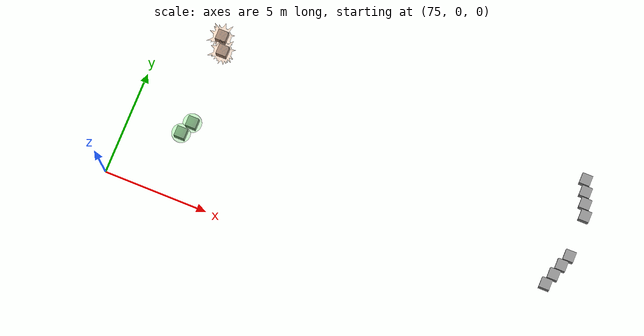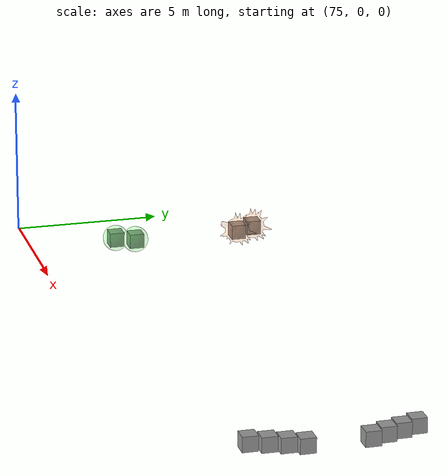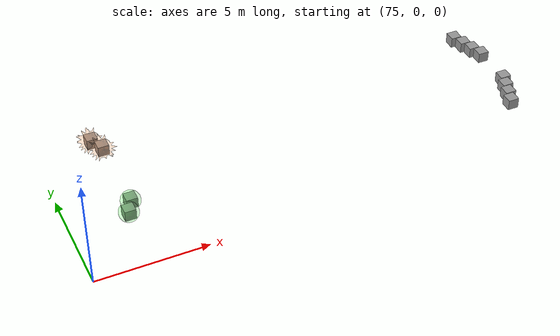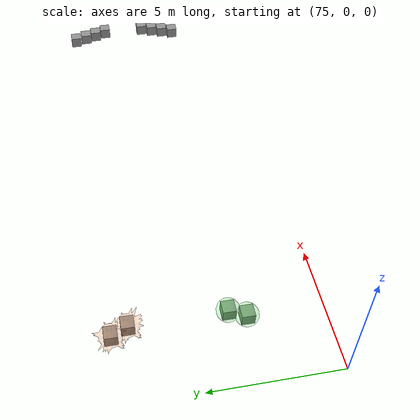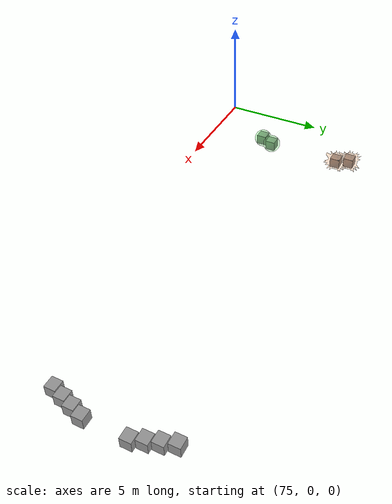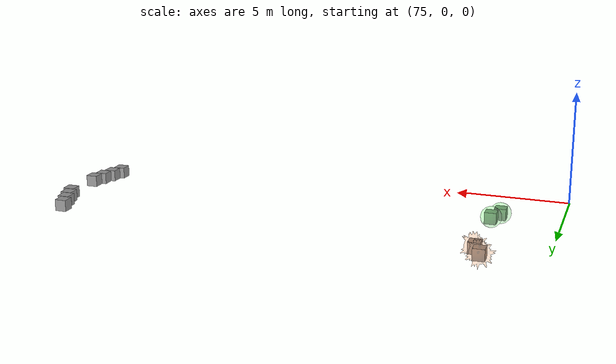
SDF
<sdf version="1.6">
 <world name="default">
  <model name="trap_cont_2_ubias">
   <static>0</static>
   <static>0</static>
   <link name="attracting_cue_0::vis_cue_attract">
    <inertial>
     <mass>1</mass>
     <inertia>
      <ixx>0.166667</ixx>
      <ixy>0</ixy>
      <ixz>0</ixz>
      <iyy>0.166667</iyy>
      <iyz>0</iyz>
      <izz>0.166667</izz>
     </inertia>
    </inertial>
    <collision name="collision"><geometry><box><size>0.5 0.5 0.5</size></box></geometry></collision>
    <visual name="box_visual">
     <geometry><box><size>0.5 0.5 0.5</size></box></geometry>
     <material>
      <script><name>Gazebo/Grey</name><uri>file://media/materials/scripts/gazebo.material</uri></script>
     </material>
    </visual>
    <visual name="cue_visual">
     <geometry><sphere><radius>0.45</radius></sphere></geometry>
     <material>
      <ambient>0 1 0 0.15</ambient>
      <diffuse>0 1 0 0.15</diffuse>
      <specular>0 1 0 0.15</specular>
      <emissive>0 0 0 0</emissive>
     </material>
    </visual>
    <pose>0 -2.48 0.25 0 -0 0</pose>
   </link>
   <static>0</static>
   <link name="attracting_cue_1::vis_cue_attract">
    <inertial>
     <mass>1</mass>
     <inertia>
      <ixx>0.166667</ixx>
      <ixy>0</ixy>
      <ixz>0</ixz>
      <iyy>0.166667</iyy>
      <iyz>0</iyz>
      <izz>0.166667</izz>
     </inertia>
    </inertial>
    <collision name="collision"><geometry><box><size>0.5 0.5 0.5</size></box></geometry></collision>
    <visual name="box_visual">
     <geometry><box><size>0.5 0.5 0.5</size></box></geometry>
     <material>
      <script><name>Gazebo/Grey</name><uri>file://media/materials/scripts/gazebo.material</uri></script>
     </material>
    </visual>
    <visual name="cue_visual">
     <geometry><sphere><radius>0.45</radius></sphere></geometry>
     <material>
      <ambient>0 1 0 0.15</ambient>
      <diffuse>0 1 0 0.15</diffuse>
      <specular>0 1 0 0.15</specular>
      <emissive>0 0 0 0</emissive>
     </material>
    </visual>
    <pose>0.3 -1.845 0.25 0 -0 0</pose>
   </link>
   <static>0</static>
   <link name="repelling_cue_0::vis_cue_repel">
    <inertial>
     <mass>1</mass>
     <inertia>
      <ixx>0.166667</ixx>
      <ixy>0</ixy>
      <ixz>0</ixz>
      <iyy>0.166667</iyy>
      <iyz>0</iyz>
      <izz>0.166667</izz>
     </inertia>
    </inertial>
    <collision name="collision"><geometry><box><size>0.5 0.5 0.5</size></box></geometry></collision>
    <visual name="box_visual">
     <geometry><box><size>0.5 0.5 0.5</size></box></geometry>
     <material>
      <script><name>Gazebo/Grey</name><uri>file://media/materials/scripts/gazebo.material</uri></script>
     </material>
    </visual>
    <visual name="cue_visual">
     <geometry><mesh><uri>model://repelling_cue_2.dae</uri><scale>0.85 0.85 0.85</scale></mesh></geometry>
     <material>
      <ambient>1 0.4 0 0.2</ambient>
      <diffuse>1 0.4 0 0.2</diffuse>
      <specular>1 0.4 0 0.5</specular>
      <emissive>0.5 0.2 0 0.1</emissive>
     </material>
    </visual>
    <pose>0.3 1.845 0.25 0 -0 0</pose>
   </link>
   <static>0</static>
   <link name="repelling_cue_1::vis_cue_repel">
    <inertial>
     <mass>1</mass>
     <inertia>
      <ixx>0.166667</ixx>
      <ixy>0</ixy>
      <ixz>0</ixz>
      <iyy>0.166667</iyy>
      <iyz>0</iyz>
      <izz>0.166667</izz>
     </inertia>
    </inertial>
    <collision name="collision"><geometry><box><size>0.5 0.5 0.5</size></box></geometry></collision>
    <visual name="box_visual">
     <geometry><box><size>0.5 0.5 0.5</size></box></geometry>
     <material>
      <script><name>Gazebo/Grey</name><uri>file://media/materials/scripts/gazebo.material</uri></script>
     </material>
    </visual>
    <visual name="cue_visual">
     <geometry><mesh><uri>model://repelling_cue_2.dae</uri><scale>0.85 0.85 0.85</scale></mesh></geometry>
     <material>
      <ambient>1 0.4 0 0.2</ambient>
      <diffuse>1 0.4 0 0.2</diffuse>
      <specular>1 0.4 0 0.5</specular>
      <emissive>0.5 0.2 0 0.1</emissive>
     </material>
    </visual>
    <pose>0 2.48 0.25 0 -0 0</pose>
   </link>
   <pose>77.5502 5.42584 -2.4e-05 -7e-06 7e-06 0</pose>
  </model>
  <model name="trap_gate_2">
   <static>1</static>
   <static>0</static>
   <link name="normal_cue_0::vis_cue_normal">
    <inertial>
     <mass>1</mass>
     <inertia>
      <ixx>0.166667</ixx>
      <ixy>0</ixy>
      <ixz>0</ixz>
      <iyy>0.166667</iyy>
      <iyz>0</iyz>
      <izz>0.166667</izz>
     </inertia>
    </inertial>
    <collision name="collision"><geometry><box><size>0.5 0.5 0.5</size></box></geometry></collision>
    <visual name="box_visual">
     <geometry><box><size>0.5 0.5 0.5</size></box></geometry>
     <material>
      <script><name>Gazebo/Grey</name><uri>file://media/materials/scripts/gazebo.material</uri></script>
     </material>
    </visual>
    <pose>0 -2.6 0.25 0 -0 0</pose>
   </link>
   <static>0</static>
   <link name="normal_cue_1::vis_cue_normal">
    <inertial>
     <mass>1</mass>
     <inertia>
      <ixx>0.166667</ixx>
      <ixy>0</ixy>
      <ixz>0</ixz>
      <iyy>0.166667</iyy>
      <iyz>0</iyz>
      <izz>0.166667</izz>
     </inertia>
    </inertial>
    <collision name="collision"><geometry><box><size>0.5 0.5 0.5</size></box></geometry></collision>
    <visual name="box_visual">
     <geometry><box><size>0.5 0.5 0.5</size></box></geometry>
     <material>
      <script><name>Gazebo/Grey</name><uri>file://media/materials/scripts/gazebo.material</uri></script>
     </material>
    </visual>
    <pose>0.19 -2.06 0.25 0 -0 0</pose>
   </link>
   <static>0</static>
   <link name="normal_cue_2::vis_cue_normal">
    <inertial>
     <mass>1</mass>
     <inertia>
      <ixx>0.166667</ixx>
      <ixy>0</ixy>
      <ixz>0</ixz>
      <iyy>0.166667</iyy>
      <iyz>0</iyz>
      <izz>0.166667</izz>
     </inertia>
    </inertial>
    <collision name="collision"><geometry><box><size>0.5 0.5 0.5</size></box></geometry></collision>
    <visual name="box_visual">
     <geometry><box><size>0.5 0.5 0.5</size></box></geometry>
     <material>
      <script><name>Gazebo/Grey</name><uri>file://media/materials/scripts/gazebo.material</uri></script>
     </material>
    </visual>
    <pose>0.37 -1.53 0.25 0 -0 0</pose>
   </link>
   <static>0</static>
   <link name="normal_cue_3::vis_cue_normal">
    <inertial>
     <mass>1</mass>
     <inertia>
      <ixx>0.166667</ixx>
      <ixy>0</ixy>
      <ixz>0</ixz>
      <iyy>0.166667</iyy>
      <iyz>0</iyz>
      <izz>0.166667</izz>
     </inertia>
    </inertial>
    <collision name="collision"><geometry><box><size>0.5 0.5 0.5</size></box></geometry></collision>
    <visual name="box_visual">
     <geometry><box><size>0.5 0.5 0.5</size></box></geometry>
     <material>
      <script><name>Gazebo/Grey</name><uri>file://media/materials/scripts/gazebo.material</uri></script>
     </material>
    </visual>
    <pose>0.56 -1 0.25 0 -0 0</pose>
   </link>
   <static>0</static>
   <link name="normal_cue_4::vis_cue_normal">
    <inertial>
     <mass>1</mass>
     <inertia>
      <ixx>0.166667</ixx>
      <ixy>0</ixy>
      <ixz>0</ixz>
      <iyy>0.166667</iyy>
      <iyz>0</iyz>
      <izz>0.166667</izz>
     </inertia>
    </inertial>
    <collision name="collision"><geometry><box><size>0.5 0.5 0.5</size></box></geometry></collision>
    <visual name="box_visual">
     <geometry><box><size>0.5 0.5 0.5</size></box></geometry>
     <material>
      <script><name>Gazebo/Grey</name><uri>file://media/materials/scripts/gazebo.material</uri></script>
     </material>
    </visual>
    <pose>0.56 1 0.25 0 -0 0</pose>
   </link>
   <static>0</static>
   <link name="normal_cue_5::vis_cue_normal">
    <inertial>
     <mass>1</mass>
     <inertia>
      <ixx>0.166667</ixx>
      <ixy>0</ixy>
      <ixz>0</ixz>
      <iyy>0.166667</iyy>
      <iyz>0</iyz>
      <izz>0.166667</izz>
     </inertia>
    </inertial>
    <collision name="collision"><geometry><box><size>0.5 0.5 0.5</size></box></geometry></collision>
    <visual name="box_visual">
     <geometry><box><size>0.5 0.5 0.5</size></box></geometry>
     <material>
      <script><name>Gazebo/Grey</name><uri>file://media/materials/scripts/gazebo.material</uri></script>
     </material>
    </visual>
    <pose>0.37 1.53 0.25 0 -0 0</pose>
   </link>
   <static>0</static>
   <link name="normal_cue_6::vis_cue_normal">
    <inertial>
     <mass>1</mass>
     <inertia>
      <ixx>0.166667</ixx>
      <ixy>0</ixy>
      <ixz>0</ixz>
      <iyy>0.166667</iyy>
      <iyz>0</iyz>
      <izz>0.166667</izz>
     </inertia>
    </inertial>
    <collision name="collision"><geometry><box><size>0.5 0.5 0.5</size></box></geometry></collision>
    <visual name="box_visual">
     <geometry><box><size>0.5 0.5 0.5</size></box></geometry>
     <material>
      <script><name>Gazebo/Grey</name><uri>file://media/materials/scripts/gazebo.material</uri></script>
     </material>
    </visual>
    <pose>0.19 2.06 0.25 0 -0 0</pose>
   </link>
   <static>0</static>
   <link name="normal_cue_7::vis_cue_normal">
    <inertial>
     <mass>1</mass>
     <inertia>
      <ixx>0.166667</ixx>
      <ixy>0</ixy>
      <ixz>0</ixz>
      <iyy>0.166667</iyy>
      <iyz>0</iyz>
      <izz>0.166667</izz>
     </inertia>
    </inertial>
    <collision name="collision"><geometry><box><size>0.5 0.5 0.5</size></box></geometry></collision>
    <visual name="box_visual">
     <geometry><box><size>0.5 0.5 0.5</size></box></geometry>
     <material>
      <script><name>Gazebo/Grey</name><uri>file://media/materials/scripts/gazebo.material</uri></script>
     </material>
    </visual>
    <pose>0 2.6 0.25 0 -0 0</pose>
   </link>
   <pose>95.7217 5.25884 0 0 -0 0</pose>
  </model>
 </world>
</sdf>
